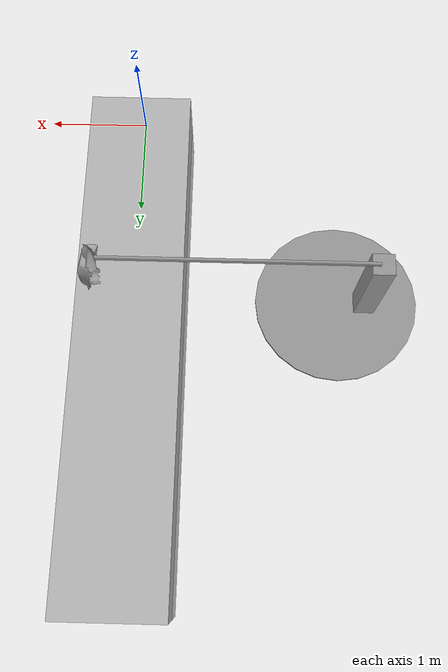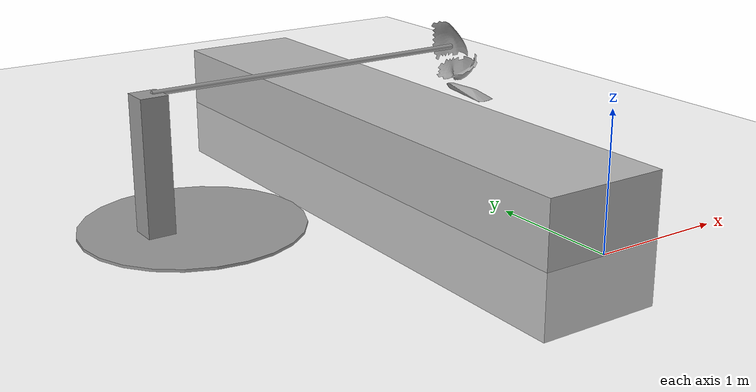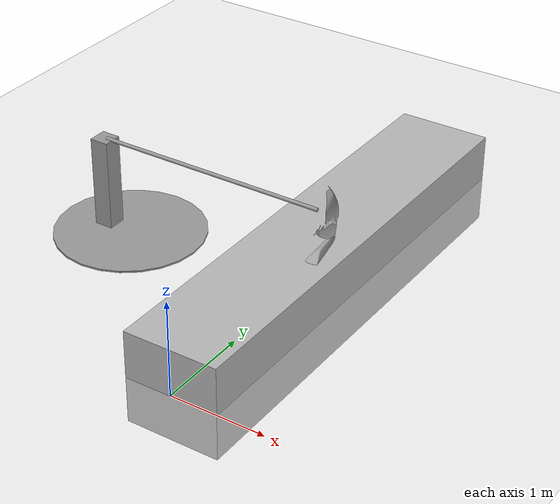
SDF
<?xml version="1.0" ?>
<sdf version="1.5">
  <world name="default">
    <include>
      <uri>model://ground_plane</uri>
    </include>
    <include>
      <uri>model://sun</uri>
    </include>
    <include>
      <uri>model://conveyor_belt</uri>
    </include>
    <include>
      <uri>model://mouse_leg</uri>
      <pose>-2 2 0 0 0 0</pose>
    </include>
  </world>
</sdf>

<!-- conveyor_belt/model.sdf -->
<sdf version="1.6">
    <!-- the origin of this model is at the middle of the 'top' of the belt -->
    <model name="conveyor_belt">
        <static>true</static>
        <plugin name="conveyor_belt_plugin" filename="libconveyor_belt_plugin.so">
            <belt_start_velocity>0.2</belt_start_velocity>
            <velocity_axis>0 1 0</velocity_axis>
            <contact_sensor_name>conveyor_belt_contact</contact_sensor_name>
            <log_directory>/home.local/faichele/Documents/gazebo_mouse_leg_stats</log_directory>
        </plugin>
        <link name="belt">
            <pose>0 2.5 0 0 0 0</pose>
            <sensor name='conveyor_belt_contact' type='contact'>
                <update_rate>10</update_rate>
                <contact>
                    <collision>belt_collision</collision>
                </contact>
            </sensor>
            <inertial>
                <mass>10</mass>
                <inertia>
                    <ixx>20.841</ixx>
                    <ixy>0</ixy>
                    <ixz>0</ixz>
                    <iyy>0.8417</iyy>
                    <iyz>0</iyz>
                    <izz>21.66667</izz>
                </inertia>
            </inertial>
            <collision name="belt_collision">
            <geometry>
                <box>
                <size>1 5 1</size>
                </box>
            </geometry>
            <surface>
                <friction>
                    <ode>
                        <mu>0.0</mu>
                        <mu2>0.0</mu2>
                    </ode>
                    <torsional>
                        <coefficient>1000.0</coefficient>
                        <patch_radius>0.1</patch_radius>
                    </torsional>
                </friction>
            </surface>
            </collision>
            <visual name="visual">
            <geometry>
                <box>
                <size>1 5 1</size>
                </box>
            </geometry>
            </visual>
        </link>
    </model>
</sdf>

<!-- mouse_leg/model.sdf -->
<sdf version='1.6'>
  <model name='mouse_hind_leg'>
    <pose>0 0 0 0 0 0</pose>
    <link name="base">
      <kinematic>true</kinematic>
      <inertial>
        <mass>5000</mass>
      </inertial>
      <visual name="vis_plate_on_ground">
        <pose>0 0 0.01 0 0 0</pose>
        <geometry>
          <cylinder>
            <radius>0.8</radius>
            <length>0.02</length>
          </cylinder>
        </geometry>
        <material>
          <script>
            <uri>file://media/materials/scripts/gazebo.material</uri>
            <name>Gazebo/Grey</name>
          </script>
        </material>
      </visual>
      <visual name="vis_pole">
        <pose>-0.275 0 0.5 0 0 0</pose>
        <geometry>
          <box>
            <size>0.2 0.2 1</size>
          </box>
        </geometry>
        <material>
          <script>
            <uri>file://media/materials/scripts/gazebo.material</uri>
            <name>Gazebo/Grey</name>
          </script>
        </material>
      </visual>
      <collision name="col_plate_on_ground">
        <pose>0 0 0.01 0 0 0</pose>
        <geometry>
          <cylinder>
            <radius>0.8</radius>
            <length>0.02</length>
          </cylinder>
        </geometry>
      </collision>
      <collision name="col_pole">
        <pose>-0.275 0 0.5 0 0 0</pose>
        <geometry>
          <box>
            <size>0.2 0.2 1</size>
          </box>
        </geometry>
      </collision>
    </link>

    <link name="upper_link">
      <pose>0 0 1 -1.5708 0 0</pose>
      <self_collide>0</self_collide>
      <inertial>
        <pose>0 0 0.5 0 0 0</pose>
      </inertial>
      <visual name="vis_upper_joint">
        <pose>1.0 0 0 0 1.5708 0</pose>
        <geometry>
          <cylinder>
            <radius>0.02</radius>
            <length>2.5</length>
          </cylinder>
        </geometry>
        <material>
          <script>
            <uri>file://media/materials/scripts/gazebo.material</uri>
            <name>Gazebo/Grey</name>
          </script>
        </material>
      </visual>

      <collision name="col_upper_joint">
        <pose>1.0 0 0 0 1.5708 0</pose>
        <geometry>
          <cylinder>
            <radius>0.02</radius>
            <length>2.5</length>
          </cylinder>
        </geometry>
      </collision>
    </link>

    <!-- pin joint for upper link, at origin of upper link -->
    <joint name="upper_joint" type="revolute">
      <parent>base</parent>
      <child>upper_link</child>
      <axis>
        <xyz>1.0 0 0</xyz>
        <limit>
          <lower>-0.523599</lower>
          <upper>0.523599</upper>
        </limit>
        <dynamics>
          <damping>0.1</damping>
          <friction>0.05</friction>
          <spring_reference>0</spring_reference>
          <spring_stiffness>0</spring_stiffness>
        </dynamics>
        <use_parent_model_frame>true</use_parent_model_frame>
      </axis>
      <physics>
        <provide_feedback>true</provide_feedback>
      </physics>
    </joint>

    <link name='thigh_L_link'>
      <pose frame=''>2.35 0 1 0 0 0</pose>
      <inertial>
        <pose frame=''>0 -0.15 -0.1 0 0 0</pose>
        <mass>1</mass>
        <inertia>
          <ixx>1</ixx>
          <ixy>0</ixy>
          <ixz>0</ixz>
          <iyy>1</iyy>
          <iyz>0</iyz>
          <izz>1</izz>
        </inertia>
      </inertial>
      <collision name='thigh_L_link_collision'>
        <geometry>
          <mesh>
            <scale>1 1 1</scale>
            <uri>model://mouse_leg/collisions/COL_obj_thigh.L_convex_hull.dae</uri>
          </mesh>
        </geometry>
      </collision>
      <visual name='thigh_L_link_visual'>
        <geometry>
          <mesh>
            <scale>1 1 1</scale>
            <uri>model://mouse_leg/meshes/obj_thigh.L.dae</uri>
          </mesh>
        </geometry>
      </visual>
    </link>
    <joint name='thigh_L_joint' type='revolute'>
      <child>thigh_L_link</child>
      <parent>upper_link</parent>
      <axis>
        <xyz>1 1e-06 -2e-06</xyz>
        <limit>
          <lower>-0.523599</lower>
          <upper>0.523599</upper>
        </limit>
        <dynamics>
          <damping>0.1</damping>
          <friction>0.05</friction>
          <spring_reference>0</spring_reference>
          <spring_stiffness>0</spring_stiffness>
        </dynamics>
        <use_parent_model_frame>1</use_parent_model_frame>
      </axis>
      <physics>
        <provide_feedback>true</provide_feedback>
      </physics>
    </joint>

    <link name='shin_L_link'>
      <pose frame=''>2.35 0 0.8 0 0 0</pose>
      <inertial>
        <pose frame=''>0 -0.1 -0.05 0 -0 0</pose>
        <mass>2</mass>
        <inertia>
          <ixx>1</ixx>
          <ixy>0</ixy>
          <ixz>0</ixz>
          <iyy>1</iyy>
          <iyz>0</iyz>
          <izz>1</izz>
        </inertia>
      </inertial>
      <collision name='shin_L_link_collision'>
        <pose frame=''>-0.000663 0.009381 -0.006255 1e-06 0 -1e-06</pose>
        <geometry>
          <mesh>
            <scale>1 1 1</scale>
            <uri>model://mouse_leg/collisions/COL_obj_shin.L_convex_hull.dae</uri>
          </mesh>
        </geometry>
      </collision>
      <visual name='shin_L_link_visual'>
        <pose frame=''>-0.000663 0.009381 -0.006255 1e-06 0 -1e-06</pose>
        <geometry>
          <mesh>
            <scale>1 1 1</scale>
            <uri>model://mouse_leg/meshes/obj_shin.L.dae</uri>
          </mesh>
        </geometry>
      </visual>
    </link>
    <joint name='shin_L_joint' type='revolute'>
      <child>shin_L_link</child>
      <parent>thigh_L_link</parent>
      <axis>
        <xyz>1 1e-06 -2e-06</xyz>
        <limit>
          <lower>-0.78</lower>
          <upper>0.78</upper>
        </limit>
        <dynamics>
          <damping>0.1</damping>
          <friction>0.05</friction>
          <spring_reference>0.1</spring_reference>
          <spring_stiffness>0.5</spring_stiffness>
        </dynamics>
        <use_parent_model_frame>1</use_parent_model_frame>
      </axis>
      <physics>
        <provide_feedback>true</provide_feedback>
      </physics>
    </joint>

    <link name='shin_lower_L_link'>
      <pose frame=''>2.35 0 0.65 0 0 0</pose>
      <inertial>
        <pose frame=''>0 0 0 0 -0 0</pose>
        <mass>2</mass>
        <inertia>
          <ixx>1</ixx>
          <ixy>0</ixy>
          <ixz>0</ixz>
          <iyy>1</iyy>
          <iyz>0</iyz>
          <izz>1</izz>
        </inertia>
      </inertial>
      <collision name='shin_lower_L_link_collision'>
        <pose frame=''>0.000457 -0.007472 -0.000436 1e-06 0 -1e-06</pose>
        <geometry>
          <mesh>
            <scale>1 1 1</scale>
            <uri>model://mouse_leg/collisions/COL_obj_shin_lower.L_convex_hull.dae</uri>
          </mesh>
        </geometry>
      </collision>
      <visual name='shin_lower_L_link_visual'>
        <pose frame=''>0.000457 -0.007472 -0.000436 1e-06 0 -1e-06</pose>
        <geometry>
          <mesh>
            <scale>1 1 1</scale>
            <uri>model://mouse_leg/meshes/obj_shin_lower.L.dae</uri>
          </mesh>
        </geometry>
      </visual>
    </link>
    <joint name='shin_lower_L_joint' type='revolute'>
      <child>shin_lower_L_link</child>
      <parent>shin_L_link</parent>
      <axis>
        <xyz>1 1e-06 -2e-06</xyz>
        <limit>
          <lower>-1000000.0</lower>
          <upper>1000000.0</upper>
        </limit>
        <dynamics>
          <damping>0.1</damping>
          <friction>0.05</friction>
          <spring_reference>0.1</spring_reference>
          <spring_stiffness>0.5</spring_stiffness>
        </dynamics>
        <use_parent_model_frame>1</use_parent_model_frame>
      </axis>
      <physics>
        <provide_feedback>true</provide_feedback>
      </physics>
    </joint>

    <static>false</static>
    <self_collide>false</self_collide>
  </model>
</sdf>
